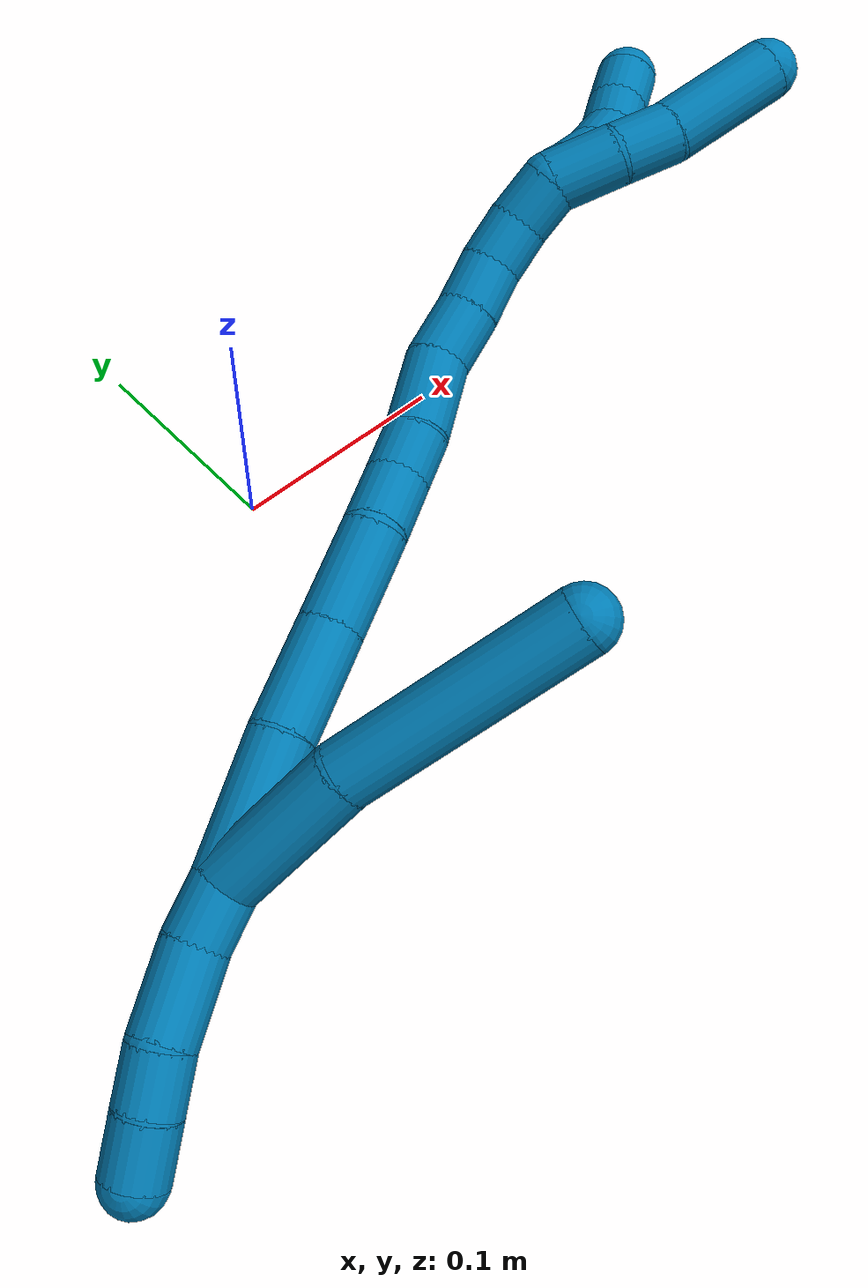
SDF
<sdf version="1.7">
 <world name="default">
  <model name="9">
   <static>0</static>
   <link name="9">
    <collision name="collision-cylinder-e_1_2_8">
     <pose>0.017546 -0.02102 0.006405 1.27502 0.673825 0.50768</pose>
     <geometry><cylinder><radius>0.0125</radius><length>0.05624</length></cylinder></geometry>
     <surface>
      <friction><ode><mu>1.16</mu><mu2>1.16</mu2><slip1>0</slip1><slip2>0</slip2></ode></friction>
      <contact><ode><kp>1e+06</kp><kd>1</kd><max_vel>0</max_vel><min_depth>0.001</min_depth></ode></contact>
     </surface>
    </collision>
    <visual name="visual-cylinder-e_1_2_8">
     <pose>0.017546 -0.02102 0.006405 1.27502 0.673825 0.50768</pose>
     <geometry><cylinder><radius>0.0125</radius><length>0.05624</length></cylinder></geometry>
     <material><ambient>0 0.490196 0.709804 1</ambient></material>
    </visual>
    <collision name="collision-cylinder-e_2_8_6">
     <pose>0.059445 -0.08179 0.017775 1.44653 0.54621 0.484856</pose>
     <geometry><cylinder><radius>0.0125</radius><length>0.09376</length></cylinder></geometry>
     <surface>
      <friction><ode><mu>1.16</mu><mu2>1.16</mu2><slip1>0</slip1><slip2>0</slip2></ode></friction>
      <contact><ode><kp>1e+06</kp><kd>1</kd><max_vel>0</max_vel><min_depth>0.001</min_depth></ode></contact>
     </surface>
    </collision>
    <visual name="visual-cylinder-e_2_8_6">
     <pose>0.059445 -0.08179 0.017775 1.44653 0.54621 0.484856</pose>
     <geometry><cylinder><radius>0.0125</radius><length>0.09376</length></cylinder></geometry>
     <material><ambient>0 0.490196 0.709804 1</ambient></material>
    </visual>
    <collision name="collision-cylinder-e_1_2_9">
     <pose>-0.01019 0.004613 0.001362 -1.28361 -1.1298 0.884726</pose>
     <geometry><cylinder><radius>0.0125</radius><length>0.022535</length></cylinder></geometry>
     <surface>
      <friction><ode><mu>1.16</mu><mu2>1.16</mu2><slip1>0</slip1><slip2>0</slip2></ode></friction>
      <contact><ode><kp>1e+06</kp><kd>1</kd><max_vel>0</max_vel><min_depth>0.001</min_depth></ode></contact>
     </surface>
    </collision>
    <visual name="visual-cylinder-e_1_2_9">
     <pose>-0.01019 0.004613 0.001362 -1.28361 -1.1298 0.884726</pose>
     <geometry><cylinder><radius>0.0125</radius><length>0.022535</length></cylinder></geometry>
     <material><ambient>0 0.490196 0.709804 1</ambient></material>
    </visual>
    <collision name="collision-cylinder-e_2_9_10">
     <pose>-0.036065 0.013448 0.00593 -0.921529 -1.2449 0.684418</pose>
     <geometry><cylinder><radius>0.0125</radius><length>0.033115</length></cylinder></geometry>
     <surface>
      <friction><ode><mu>1.16</mu><mu2>1.16</mu2><slip1>0</slip1><slip2>0</slip2></ode></friction>
      <contact><ode><kp>1e+06</kp><kd>1</kd><max_vel>0</max_vel><min_depth>0.001</min_depth></ode></contact>
     </surface>
    </collision>
    <visual name="visual-cylinder-e_2_9_10">
     <pose>-0.036065 0.013448 0.00593 -0.921529 -1.2449 0.684418</pose>
     <geometry><cylinder><radius>0.0125</radius><length>0.033115</length></cylinder></geometry>
     <material><ambient>0 0.490196 0.709804 1</ambient></material>
    </visual>
    <collision name="collision-cylinder-e_3_10_11">
     <pose>-0.062347 0.019666 0.009064 -1.60631 -1.3845 1.41951</pose>
     <geometry><cylinder><radius>0.0125</radius><length>0.021566</length></cylinder></geometry>
     <surface>
      <friction><ode><mu>1.16</mu><mu2>1.16</mu2><slip1>0</slip1><slip2>0</slip2></ode></friction>
      <contact><ode><kp>1e+06</kp><kd>1</kd><max_vel>0</max_vel><min_depth>0.001</min_depth></ode></contact>
     </surface>
    </collision>
    <visual name="visual-cylinder-e_3_10_11">
     <pose>-0.062347 0.019666 0.009064 -1.60631 -1.3845 1.41951</pose>
     <geometry><cylinder><radius>0.0125</radius><length>0.021566</length></cylinder></geometry>
     <material><ambient>0 0.490196 0.709804 1</ambient></material>
    </visual>
    <collision name="collision-cylinder-e_4_11_5">
     <pose>-0.083992 0.024067 0.007601 -2.09557 -1.3244 1.86805</pose>
     <geometry><cylinder><radius>0.0125</radius><length>0.022784</length></cylinder></geometry>
     <surface>
      <friction><ode><mu>1.16</mu><mu2>1.16</mu2><slip1>0</slip1><slip2>0</slip2></ode></friction>
      <contact><ode><kp>1e+06</kp><kd>1</kd><max_vel>0</max_vel><min_depth>0.001</min_depth></ode></contact>
     </surface>
    </collision>
    <visual name="visual-cylinder-e_4_11_5">
     <pose>-0.083992 0.024067 0.007601 -2.09557 -1.3244 1.86805</pose>
     <geometry><cylinder><radius>0.0125</radius><length>0.022784</length></cylinder></geometry>
     <material><ambient>0 0.490196 0.709804 1</ambient></material>
    </visual>
    <collision name="collision-cylinder-e_1_2_12">
     <pose>0.024199 -0.007461 -0.005606 2.21517 1.20272 1.88315</pose>
     <geometry><cylinder><radius>0.0125</radius><length>0.051873</length></cylinder></geometry>
     <surface>
      <friction><ode><mu>1.16</mu><mu2>1.16</mu2><slip1>0</slip1><slip2>0</slip2></ode></friction>
      <contact><ode><kp>1e+06</kp><kd>1</kd><max_vel>0</max_vel><min_depth>0.001</min_depth></ode></contact>
     </surface>
    </collision>
    <visual name="visual-cylinder-e_1_2_12">
     <pose>0.024199 -0.007461 -0.005606 2.21517 1.20272 1.88315</pose>
     <geometry><cylinder><radius>0.0125</radius><length>0.051873</length></cylinder></geometry>
     <material><ambient>0 0.490196 0.709804 1</ambient></material>
    </visual>
    <collision name="collision-cylinder-e_2_12_13">
     <pose>0.067432 -0.02141 -0.018393 2.40689 1.10038 2.02096</pose>
     <geometry><cylinder><radius>0.0125</radius><length>0.042705</length></cylinder></geometry>
     <surface>
      <friction><ode><mu>1.16</mu><mu2>1.16</mu2><slip1>0</slip1><slip2>0</slip2></ode></friction>
      <contact><ode><kp>1e+06</kp><kd>1</kd><max_vel>0</max_vel><min_depth>0.001</min_depth></ode></contact>
     </surface>
    </collision>
    <visual name="visual-cylinder-e_2_12_13">
     <pose>0.067432 -0.02141 -0.018393 2.40689 1.10038 2.02096</pose>
     <geometry><cylinder><radius>0.0125</radius><length>0.042705</length></cylinder></geometry>
     <material><ambient>0 0.490196 0.709804 1</ambient></material>
    </visual>
    <collision name="collision-cylinder-e_3_13_14">
     <pose>0.10476 -0.034478 -0.031215 2.27938 1.1284 1.88455</pose>
     <geometry><cylinder><radius>0.0125</radius><length>0.040489</length></cylinder></geometry>
     <surface>
      <friction><ode><mu>1.16</mu><mu2>1.16</mu2><slip1>0</slip1><slip2>0</slip2></ode></friction>
      <contact><ode><kp>1e+06</kp><kd>1</kd><max_vel>0</max_vel><min_depth>0.001</min_depth></ode></contact>
     </surface>
    </collision>
    <visual name="visual-cylinder-e_3_13_14">
     <pose>0.10476 -0.034478 -0.031215 2.27938 1.1284 1.88455</pose>
     <geometry><cylinder><radius>0.0125</radius><length>0.040489</length></cylinder></geometry>
     <material><ambient>0 0.490196 0.709804 1</ambient></material>
    </visual>
    <collision name="collision-cylinder-e_4_14_15">
     <pose>0.133525 -0.043803 -0.042946 2.71839 1.0028 2.39456</pose>
     <geometry><cylinder><radius>0.0125</radius><length>0.024839</length></cylinder></geometry>
     <surface>
      <friction><ode><mu>1.16</mu><mu2>1.16</mu2><slip1>0</slip1><slip2>0</slip2></ode></friction>
      <contact><ode><kp>1e+06</kp><kd>1</kd><max_vel>0</max_vel><min_depth>0.001</min_depth></ode></contact>
     </surface>
    </collision>
    <visual name="visual-cylinder-e_4_14_15">
     <pose>0.133525 -0.043803 -0.042946 2.71839 1.0028 2.39456</pose>
     <geometry><cylinder><radius>0.0125</radius><length>0.024839</length></cylinder></geometry>
     <material><ambient>0 0.490196 0.709804 1</ambient></material>
    </visual>
    <collision name="collision-cylinder-e_5_15_16">
     <pose>0.153275 -0.049584 -0.05226 2.38564 1.1256 2.01805</pose>
     <geometry><cylinder><radius>0.0125</radius><length>0.020566</length></cylinder></geometry>
     <surface>
      <friction><ode><mu>1.16</mu><mu2>1.16</mu2><slip1>0</slip1><slip2>0</slip2></ode></friction>
      <contact><ode><kp>1e+06</kp><kd>1</kd><max_vel>0</max_vel><min_depth>0.001</min_depth></ode></contact>
     </surface>
    </collision>
    <visual name="visual-cylinder-e_5_15_16">
     <pose>0.153275 -0.049584 -0.05226 2.38564 1.1256 2.01805</pose>
     <geometry><cylinder><radius>0.0125</radius><length>0.020566</length></cylinder></geometry>
     <material><ambient>0 0.490196 0.709804 1</ambient></material>
    </visual>
    <collision name="collision-cylinder-e_6_16_17">
     <pose>0.177908 -0.055399 -0.061462 2.70679 1.16512 2.49459</pose>
     <geometry><cylinder><radius>0.0125</radius><length>0.033417</length></cylinder></geometry>
     <surface>
      <friction><ode><mu>1.16</mu><mu2>1.16</mu2><slip1>0</slip1><slip2>0</slip2></ode></friction>
      <contact><ode><kp>1e+06</kp><kd>1</kd><max_vel>0</max_vel><min_depth>0.001</min_depth></ode></contact>
     </surface>
    </collision>
    <visual name="visual-cylinder-e_6_16_17">
     <pose>0.177908 -0.055399 -0.061462 2.70679 1.16512 2.49459</pose>
     <geometry><cylinder><radius>0.0125</radius><length>0.033417</length></cylinder></geometry>
     <material><ambient>0 0.490196 0.709804 1</ambient></material>
    </visual>
    <collision name="collision-cylinder-e_7_17_18">
     <pose>0.20372 -0.063566 -0.070323 2.06171 1.04203 1.52744</pose>
     <geometry><cylinder><radius>0.0125</radius><length>0.024228</length></cylinder></geometry>
     <surface>
      <friction><ode><mu>1.16</mu><mu2>1.16</mu2><slip1>0</slip1><slip2>0</slip2></ode></friction>
      <contact><ode><kp>1e+06</kp><kd>1</kd><max_vel>0</max_vel><min_depth>0.001</min_depth></ode></contact>
     </surface>
    </collision>
    <visual name="visual-cylinder-e_7_17_18">
     <pose>0.20372 -0.063566 -0.070323 2.06171 1.04203 1.52744</pose>
     <geometry><cylinder><radius>0.0125</radius><length>0.024228</length></cylinder></geometry>
     <material><ambient>0 0.490196 0.709804 1</ambient></material>
    </visual>
    <collision name="collision-cylinder-e_8_18_19">
     <pose>0.223802 -0.073151 -0.075026 1.98048 1.1271 1.53344</pose>
     <geometry><cylinder><radius>0.0125</radius><length>0.021308</length></cylinder></geometry>
     <surface>
      <friction><ode><mu>1.16</mu><mu2>1.16</mu2><slip1>0</slip1><slip2>0</slip2></ode></friction>
      <contact><ode><kp>1e+06</kp><kd>1</kd><max_vel>0</max_vel><min_depth>0.001</min_depth></ode></contact>
     </surface>
    </collision>
    <visual name="visual-cylinder-e_8_18_19">
     <pose>0.223802 -0.073151 -0.075026 1.98048 1.1271 1.53344</pose>
     <geometry><cylinder><radius>0.0125</radius><length>0.021308</length></cylinder></geometry>
     <material><ambient>0 0.490196 0.709804 1</ambient></material>
    </visual>
    <collision name="collision-cylinder-e_9_19_20">
     <pose>0.241994 -0.082919 -0.07698 1.59454 0.994092 1.01413</pose>
     <geometry><cylinder><radius>0.0125</radius><length>0.020447</length></cylinder></geometry>
     <surface>
      <friction><ode><mu>1.16</mu><mu2>1.16</mu2><slip1>0</slip1><slip2>0</slip2></ode></friction>
      <contact><ode><kp>1e+06</kp><kd>1</kd><max_vel>0</max_vel><min_depth>0.001</min_depth></ode></contact>
     </surface>
    </collision>
    <visual name="visual-cylinder-e_9_19_20">
     <pose>0.241994 -0.082919 -0.07698 1.59454 0.994092 1.01413</pose>
     <geometry><cylinder><radius>0.0125</radius><length>0.020447</length></cylinder></geometry>
     <material><ambient>0 0.490196 0.709804 1</ambient></material>
    </visual>
    <collision name="collision-cylinder-e_10_20_1">
     <pose>0.257986 -0.095107 -0.075549 1.33867 0.829221 0.670163</pose>
     <geometry><cylinder><radius>0.0125</radius><length>0.020129</length></cylinder></geometry>
     <surface>
      <friction><ode><mu>1.16</mu><mu2>1.16</mu2><slip1>0</slip1><slip2>0</slip2></ode></friction>
      <contact><ode><kp>1e+06</kp><kd>1</kd><max_vel>0</max_vel><min_depth>0.001</min_depth></ode></contact>
     </surface>
    </collision>
    <visual name="visual-cylinder-e_10_20_1">
     <pose>0.257986 -0.095107 -0.075549 1.33867 0.829221 0.670163</pose>
     <geometry><cylinder><radius>0.0125</radius><length>0.020129</length></cylinder></geometry>
     <material><ambient>0 0.490196 0.709804 1</ambient></material>
    </visual>
    <collision name="collision-cylinder-e_1_1_21">
     <pose>0.270911 -0.114354 -0.075472 1.68803 0.408406 0.45766</pose>
     <geometry><cylinder><radius>0.0125</radius><length>0.027717</length></cylinder></geometry>
     <surface>
      <friction><ode><mu>1.16</mu><mu2>1.16</mu2><slip1>0</slip1><slip2>0</slip2></ode></friction>
      <contact><ode><kp>1e+06</kp><kd>1</kd><max_vel>0</max_vel><min_depth>0.001</min_depth></ode></contact>
     </surface>
    </collision>
    <visual name="visual-cylinder-e_1_1_21">
     <pose>0.270911 -0.114354 -0.075472 1.68803 0.408406 0.45766</pose>
     <geometry><cylinder><radius>0.0125</radius><length>0.027717</length></cylinder></geometry>
     <material><ambient>0 0.490196 0.709804 1</ambient></material>
    </visual>
    <collision name="collision-cylinder-e_2_21_22">
     <pose>0.281587 -0.137185 -0.080221 1.88026 0.449911 0.607417</pose>
     <geometry><cylinder><radius>0.0125</radius><length>0.023784</length></cylinder></geometry>
     <surface>
      <friction><ode><mu>1.16</mu><mu2>1.16</mu2><slip1>0</slip1><slip2>0</slip2></ode></friction>
      <contact><ode><kp>1e+06</kp><kd>1</kd><max_vel>0</max_vel><min_depth>0.001</min_depth></ode></contact>
     </surface>
    </collision>
    <visual name="visual-cylinder-e_2_21_22">
     <pose>0.281587 -0.137185 -0.080221 1.88026 0.449911 0.607417</pose>
     <geometry><cylinder><radius>0.0125</radius><length>0.023784</length></cylinder></geometry>
     <material><ambient>0 0.490196 0.709804 1</ambient></material>
    </visual>
    <collision name="collision-cylinder-e_3_22_4">
     <pose>0.300853 -0.166326 -0.089016 1.85503 0.620235 0.807929</pose>
     <geometry><cylinder><radius>0.0125</radius><length>0.048499</length></cylinder></geometry>
     <surface>
      <friction><ode><mu>1.16</mu><mu2>1.16</mu2><slip1>0</slip1><slip2>0</slip2></ode></friction>
      <contact><ode><kp>1e+06</kp><kd>1</kd><max_vel>0</max_vel><min_depth>0.001</min_depth></ode></contact>
     </surface>
    </collision>
    <visual name="visual-cylinder-e_3_22_4">
     <pose>0.300853 -0.166326 -0.089016 1.85503 0.620235 0.807929</pose>
     <geometry><cylinder><radius>0.0125</radius><length>0.048499</length></cylinder></geometry>
     <material><ambient>0 0.490196 0.709804 1</ambient></material>
    </visual>
    <collision name="collision-cylinder-e_1_1_23">
     <pose>0.270446 -0.104237 -0.082249 2.84627 0.52804 2.13556</pose>
     <geometry><cylinder><radius>0.0125</radius><length>0.02</length></cylinder></geometry>
     <surface>
      <friction><ode><mu>1.16</mu><mu2>1.16</mu2><slip1>0</slip1><slip2>0</slip2></ode></friction>
      <contact><ode><kp>1e+06</kp><kd>1</kd><max_vel>0</max_vel><min_depth>0.001</min_depth></ode></contact>
     </surface>
    </collision>
    <visual name="visual-cylinder-e_1_1_23">
     <pose>0.270446 -0.104237 -0.082249 2.84627 0.52804 2.13556</pose>
     <geometry><cylinder><radius>0.0125</radius><length>0.02</length></cylinder></geometry>
     <material><ambient>0 0.490196 0.709804 1</ambient></material>
    </visual>
    <collision name="collision-cylinder-e_2_23_24">
     <pose>0.28149 -0.11127 -0.097109 2.54088 0.644232 1.64539</pose>
     <geometry><cylinder><radius>0.0125</radius><length>0.02</length></cylinder></geometry>
     <surface>
      <friction><ode><mu>1.16</mu><mu2>1.16</mu2><slip1>0</slip1><slip2>0</slip2></ode></friction>
      <contact><ode><kp>1e+06</kp><kd>1</kd><max_vel>0</max_vel><min_depth>0.001</min_depth></ode></contact>
     </surface>
    </collision>
    <visual name="visual-cylinder-e_2_23_24">
     <pose>0.28149 -0.11127 -0.097109 2.54088 0.644232 1.64539</pose>
     <geometry><cylinder><radius>0.0125</radius><length>0.02</length></cylinder></geometry>
     <material><ambient>0 0.490196 0.709804 1</ambient></material>
    </visual>
    <collision name="collision-cylinder-e_3_24_25">
     <pose>0.294328 -0.118802 -0.110357 2.71635 0.752101 2.14087</pose>
     <geometry><cylinder><radius>0.0125</radius><length>0.02</length></cylinder></geometry>
     <surface>
      <friction><ode><mu>1.16</mu><mu2>1.16</mu2><slip1>0</slip1><slip2>0</slip2></ode></friction>
      <contact><ode><kp>1e+06</kp><kd>1</kd><max_vel>0</max_vel><min_depth>0.001</min_depth></ode></contact>
     </surface>
    </collision>
    <visual name="visual-cylinder-e_3_24_25">
     <pose>0.294328 -0.118802 -0.110357 2.71635 0.752101 2.14087</pose>
     <geometry><cylinder><radius>0.0125</radius><length>0.02</length></cylinder></geometry>
     <material><ambient>0 0.490196 0.709804 1</ambient></material>
    </visual>
    <collision name="collision-cylinder-e_4_25_26">
     <pose>0.309445 -0.123053 -0.12247 2.91868 0.97648 2.72622</pose>
     <geometry><cylinder><radius>0.0125</radius><length>0.02</length></cylinder></geometry>
     <surface>
      <friction><ode><mu>1.16</mu><mu2>1.16</mu2><slip1>0</slip1><slip2>0</slip2></ode></friction>
      <contact><ode><kp>1e+06</kp><kd>1</kd><max_vel>0</max_vel><min_depth>0.001</min_depth></ode></contact>
     </surface>
    </collision>
    <visual name="visual-cylinder-e_4_25_26">
     <pose>0.309445 -0.123053 -0.12247 2.91868 0.97648 2.72622</pose>
     <geometry><cylinder><radius>0.0125</radius><length>0.02</length></cylinder></geometry>
     <material><ambient>0 0.490196 0.709804 1</ambient></material>
    </visual>
    <collision name="collision-cylinder-e_5_26_3">
     <pose>0.326593 -0.126216 -0.132142 2.71276 1.08936 2.45144</pose>
     <geometry><cylinder><radius>0.0125</radius><length>0.02</length></cylinder></geometry>
     <surface>
      <friction><ode><mu>1.16</mu><mu2>1.16</mu2><slip1>0</slip1><slip2>0</slip2></ode></friction>
      <contact><ode><kp>1e+06</kp><kd>1</kd><max_vel>0</max_vel><min_depth>0.001</min_depth></ode></contact>
     </surface>
    </collision>
    <visual name="visual-cylinder-e_5_26_3">
     <pose>0.326593 -0.126216 -0.132142 2.71276 1.08936 2.45144</pose>
     <geometry><cylinder><radius>0.0125</radius><length>0.02</length></cylinder></geometry>
     <material><ambient>0 0.490196 0.709804 1</ambient></material>
    </visual>
    <collision name="collision-sphere-3">
     <pose>0.335457 -0.128142 -0.136353 0 -0 0</pose>
     <geometry><sphere><radius>0.0125</radius></sphere></geometry>
     <surface>
      <friction><ode><mu>1.16</mu><mu2>1.16</mu2><slip1>0</slip1><slip2>0</slip2></ode></friction>
      <contact><ode><kp>1e+06</kp><kd>1</kd><max_vel>0</max_vel><min_depth>0.001</min_depth></ode></contact>
     </surface>
    </collision>
    <visual name="visual-sphere-3">
     <pose>0.335457 -0.128142 -0.136353 0 -0 0</pose>
     <geometry><sphere><radius>0.0125</radius></sphere></geometry>
     <material><ambient>0 0.490196 0.709804 1</ambient></material>
    </visual>
    <collision name="collision-sphere-26">
     <pose>0.31773 -0.124291 -0.127931 0 -0 0</pose>
     <geometry><sphere><radius>0.0125</radius></sphere></geometry>
     <surface>
      <friction><ode><mu>1.16</mu><mu2>1.16</mu2><slip1>0</slip1><slip2>0</slip2></ode></friction>
      <contact><ode><kp>1e+06</kp><kd>1</kd><max_vel>0</max_vel><min_depth>0.001</min_depth></ode></contact>
     </surface>
    </collision>
    <visual name="visual-sphere-26">
     <pose>0.31773 -0.124291 -0.127931 0 -0 0</pose>
     <geometry><sphere><radius>0.0125</radius></sphere></geometry>
     <material><ambient>0 0.490196 0.709804 1</ambient></material>
    </visual>
    <collision name="collision-sphere-25">
     <pose>0.301159 -0.121815 -0.117009 0 -0 0</pose>
     <geometry><sphere><radius>0.0125</radius></sphere></geometry>
     <surface>
      <friction><ode><mu>1.16</mu><mu2>1.16</mu2><slip1>0</slip1><slip2>0</slip2></ode></friction>
      <contact><ode><kp>1e+06</kp><kd>1</kd><max_vel>0</max_vel><min_depth>0.001</min_depth></ode></contact>
     </surface>
    </collision>
    <visual name="visual-sphere-25">
     <pose>0.301159 -0.121815 -0.117009 0 -0 0</pose>
     <geometry><sphere><radius>0.0125</radius></sphere></geometry>
     <material><ambient>0 0.490196 0.709804 1</ambient></material>
    </visual>
    <collision name="collision-sphere-24">
     <pose>0.287496 -0.11579 -0.103705 0 -0 0</pose>
     <geometry><sphere><radius>0.0125</radius></sphere></geometry>
     <surface>
      <friction><ode><mu>1.16</mu><mu2>1.16</mu2><slip1>0</slip1><slip2>0</slip2></ode></friction>
      <contact><ode><kp>1e+06</kp><kd>1</kd><max_vel>0</max_vel><min_depth>0.001</min_depth></ode></contact>
     </surface>
    </collision>
    <visual name="visual-sphere-24">
     <pose>0.287496 -0.11579 -0.103705 0 -0 0</pose>
     <geometry><sphere><radius>0.0125</radius></sphere></geometry>
     <material><ambient>0 0.490196 0.709804 1</ambient></material>
    </visual>
    <collision name="collision-sphere-23">
     <pose>0.275484 -0.106751 -0.090513 0 -0 0</pose>
     <geometry><sphere><radius>0.0125</radius></sphere></geometry>
     <surface>
      <friction><ode><mu>1.16</mu><mu2>1.16</mu2><slip1>0</slip1><slip2>0</slip2></ode></friction>
      <contact><ode><kp>1e+06</kp><kd>1</kd><max_vel>0</max_vel><min_depth>0.001</min_depth></ode></contact>
     </surface>
    </collision>
    <visual name="visual-sphere-23">
     <pose>0.275484 -0.106751 -0.090513 0 -0 0</pose>
     <geometry><sphere><radius>0.0125</radius></sphere></geometry>
     <material><ambient>0 0.490196 0.709804 1</ambient></material>
    </visual>
    <collision name="collision-sphere-4">
     <pose>0.314947 -0.185268 -0.09455 0 -0 0</pose>
     <geometry><sphere><radius>0.0125</radius></sphere></geometry>
     <surface>
      <friction><ode><mu>1.16</mu><mu2>1.16</mu2><slip1>0</slip1><slip2>0</slip2></ode></friction>
      <contact><ode><kp>1e+06</kp><kd>1</kd><max_vel>0</max_vel><min_depth>0.001</min_depth></ode></contact>
     </surface>
    </collision>
    <visual name="visual-sphere-4">
     <pose>0.314947 -0.185268 -0.09455 0 -0 0</pose>
     <geometry><sphere><radius>0.0125</radius></sphere></geometry>
     <material><ambient>0 0.490196 0.709804 1</ambient></material>
    </visual>
    <collision name="collision-sphere-22">
     <pose>0.286758 -0.147385 -0.083482 0 -0 0</pose>
     <geometry><sphere><radius>0.0125</radius></sphere></geometry>
     <surface>
      <friction><ode><mu>1.16</mu><mu2>1.16</mu2><slip1>0</slip1><slip2>0</slip2></ode></friction>
      <contact><ode><kp>1e+06</kp><kd>1</kd><max_vel>0</max_vel><min_depth>0.001</min_depth></ode></contact>
     </surface>
    </collision>
    <visual name="visual-sphere-22">
     <pose>0.286758 -0.147385 -0.083482 0 -0 0</pose>
     <geometry><sphere><radius>0.0125</radius></sphere></geometry>
     <material><ambient>0 0.490196 0.709804 1</ambient></material>
    </visual>
    <collision name="collision-sphere-21">
     <pose>0.276415 -0.126986 -0.07696 0 -0 0</pose>
     <geometry><sphere><radius>0.0125</radius></sphere></geometry>
     <surface>
      <friction><ode><mu>1.16</mu><mu2>1.16</mu2><slip1>0</slip1><slip2>0</slip2></ode></friction>
      <contact><ode><kp>1e+06</kp><kd>1</kd><max_vel>0</max_vel><min_depth>0.001</min_depth></ode></contact>
     </surface>
    </collision>
    <visual name="visual-sphere-21">
     <pose>0.276415 -0.126986 -0.07696 0 -0 0</pose>
     <geometry><sphere><radius>0.0125</radius></sphere></geometry>
     <material><ambient>0 0.490196 0.709804 1</ambient></material>
    </visual>
    <collision name="collision-sphere-1">
     <pose>0.265407 -0.101723 -0.073985 0 -0 0</pose>
     <geometry><sphere><radius>0.0125</radius></sphere></geometry>
     <surface>
      <friction><ode><mu>1.16</mu><mu2>1.16</mu2><slip1>0</slip1><slip2>0</slip2></ode></friction>
      <contact><ode><kp>1e+06</kp><kd>1</kd><max_vel>0</max_vel><min_depth>0.001</min_depth></ode></contact>
     </surface>
    </collision>
    <visual name="visual-sphere-1">
     <pose>0.265407 -0.101723 -0.073985 0 -0 0</pose>
     <geometry><sphere><radius>0.0125</radius></sphere></geometry>
     <material><ambient>0 0.490196 0.709804 1</ambient></material>
    </visual>
    <collision name="collision-sphere-11">
     <pose>-0.072943 0.021662 0.008993 0 -0 0</pose>
     <geometry><sphere><radius>0.0125</radius></sphere></geometry>
     <surface>
      <friction><ode><mu>1.16</mu><mu2>1.16</mu2><slip1>0</slip1><slip2>0</slip2></ode></friction>
      <contact><ode><kp>1e+06</kp><kd>1</kd><max_vel>0</max_vel><min_depth>0.001</min_depth></ode></contact>
     </surface>
    </collision>
    <visual name="visual-sphere-11">
     <pose>-0.072943 0.021662 0.008993 0 -0 0</pose>
     <geometry><sphere><radius>0.0125</radius></sphere></geometry>
     <material><ambient>0 0.490196 0.709804 1</ambient></material>
    </visual>
    <collision name="collision-sphere-10">
     <pose>-0.051751 0.01767 0.009135 0 -0 0</pose>
     <geometry><sphere><radius>0.0125</radius></sphere></geometry>
     <surface>
      <friction><ode><mu>1.16</mu><mu2>1.16</mu2><slip1>0</slip1><slip2>0</slip2></ode></friction>
      <contact><ode><kp>1e+06</kp><kd>1</kd><max_vel>0</max_vel><min_depth>0.001</min_depth></ode></contact>
     </surface>
    </collision>
    <visual name="visual-sphere-10">
     <pose>-0.051751 0.01767 0.009135 0 -0 0</pose>
     <geometry><sphere><radius>0.0125</radius></sphere></geometry>
     <material><ambient>0 0.490196 0.709804 1</ambient></material>
    </visual>
    <collision name="collision-sphere-6">
     <pose>0.083796 -0.12154 0.022741 0 -0 0</pose>
     <geometry><sphere><radius>0.0125</radius></sphere></geometry>
     <surface>
      <friction><ode><mu>1.16</mu><mu2>1.16</mu2><slip1>0</slip1><slip2>0</slip2></ode></friction>
      <contact><ode><kp>1e+06</kp><kd>1</kd><max_vel>0</max_vel><min_depth>0.001</min_depth></ode></contact>
     </surface>
    </collision>
    <visual name="visual-sphere-6">
     <pose>0.083796 -0.12154 0.022741 0 -0 0</pose>
     <geometry><sphere><radius>0.0125</radius></sphere></geometry>
     <material><ambient>0 0.490196 0.709804 1</ambient></material>
    </visual>
    <collision name="collision-sphere-9">
     <pose>-0.020379 0.009225 0.002725 0 -0 0</pose>
     <geometry><sphere><radius>0.0125</radius></sphere></geometry>
     <surface>
      <friction><ode><mu>1.16</mu><mu2>1.16</mu2><slip1>0</slip1><slip2>0</slip2></ode></friction>
      <contact><ode><kp>1e+06</kp><kd>1</kd><max_vel>0</max_vel><min_depth>0.001</min_depth></ode></contact>
     </surface>
    </collision>
    <visual name="visual-sphere-9">
     <pose>-0.020379 0.009225 0.002725 0 -0 0</pose>
     <geometry><sphere><radius>0.0125</radius></sphere></geometry>
     <material><ambient>0 0.490196 0.709804 1</ambient></material>
    </visual>
    <collision name="collision-sphere-2">
     <geometry><sphere><radius>0.0125</radius></sphere></geometry>
     <surface>
      <friction><ode><mu>1.16</mu><mu2>1.16</mu2><slip1>0</slip1><slip2>0</slip2></ode></friction>
      <contact><ode><kp>1e+06</kp><kd>1</kd><max_vel>0</max_vel><min_depth>0.001</min_depth></ode></contact>
     </surface>
    </collision>
    <visual name="visual-sphere-2">
     <geometry><sphere><radius>0.0125</radius></sphere></geometry>
     <material><ambient>0 0.490196 0.709804 1</ambient></material>
    </visual>
    <collision name="collision-sphere-19">
     <pose>0.233425 -0.077346 -0.076848 0 -0 0</pose>
     <geometry><sphere><radius>0.0125</radius></sphere></geometry>
     <surface>
      <friction><ode><mu>1.16</mu><mu2>1.16</mu2><slip1>0</slip1><slip2>0</slip2></ode></friction>
      <contact><ode><kp>1e+06</kp><kd>1</kd><max_vel>0</max_vel><min_depth>0.001</min_depth></ode></contact>
     </surface>
    </collision>
    <visual name="visual-sphere-19">
     <pose>0.233425 -0.077346 -0.076848 0 -0 0</pose>
     <geometry><sphere><radius>0.0125</radius></sphere></geometry>
     <material><ambient>0 0.490196 0.709804 1</ambient></material>
    </visual>
    <collision name="collision-sphere-8">
     <pose>0.035093 -0.04204 0.01281 0 -0 0</pose>
     <geometry><sphere><radius>0.0125</radius></sphere></geometry>
     <surface>
      <friction><ode><mu>1.16</mu><mu2>1.16</mu2><slip1>0</slip1><slip2>0</slip2></ode></friction>
      <contact><ode><kp>1e+06</kp><kd>1</kd><max_vel>0</max_vel><min_depth>0.001</min_depth></ode></contact>
     </surface>
    </collision>
    <visual name="visual-sphere-8">
     <pose>0.035093 -0.04204 0.01281 0 -0 0</pose>
     <geometry><sphere><radius>0.0125</radius></sphere></geometry>
     <material><ambient>0 0.490196 0.709804 1</ambient></material>
    </visual>
    <collision name="collision-sphere-5">
     <pose>-0.09504 0.026471 0.006208 0 -0 0</pose>
     <geometry><sphere><radius>0.0125</radius></sphere></geometry>
     <surface>
      <friction><ode><mu>1.16</mu><mu2>1.16</mu2><slip1>0</slip1><slip2>0</slip2></ode></friction>
      <contact><ode><kp>1e+06</kp><kd>1</kd><max_vel>0</max_vel><min_depth>0.001</min_depth></ode></contact>
     </surface>
    </collision>
    <visual name="visual-sphere-5">
     <pose>-0.09504 0.026471 0.006208 0 -0 0</pose>
     <geometry><sphere><radius>0.0125</radius></sphere></geometry>
     <material><ambient>0 0.490196 0.709804 1</ambient></material>
    </visual>
    <collision name="collision-sphere-12">
     <pose>0.048398 -0.014922 -0.011212 0 -0 0</pose>
     <geometry><sphere><radius>0.0125</radius></sphere></geometry>
     <surface>
      <friction><ode><mu>1.16</mu><mu2>1.16</mu2><slip1>0</slip1><slip2>0</slip2></ode></friction>
      <contact><ode><kp>1e+06</kp><kd>1</kd><max_vel>0</max_vel><min_depth>0.001</min_depth></ode></contact>
     </surface>
    </collision>
    <visual name="visual-sphere-12">
     <pose>0.048398 -0.014922 -0.011212 0 -0 0</pose>
     <geometry><sphere><radius>0.0125</radius></sphere></geometry>
     <material><ambient>0 0.490196 0.709804 1</ambient></material>
    </visual>
    <collision name="collision-sphere-13">
     <pose>0.086465 -0.027898 -0.025575 0 -0 0</pose>
     <geometry><sphere><radius>0.0125</radius></sphere></geometry>
     <surface>
      <friction><ode><mu>1.16</mu><mu2>1.16</mu2><slip1>0</slip1><slip2>0</slip2></ode></friction>
      <contact><ode><kp>1e+06</kp><kd>1</kd><max_vel>0</max_vel><min_depth>0.001</min_depth></ode></contact>
     </surface>
    </collision>
    <visual name="visual-sphere-13">
     <pose>0.086465 -0.027898 -0.025575 0 -0 0</pose>
     <geometry><sphere><radius>0.0125</radius></sphere></geometry>
     <material><ambient>0 0.490196 0.709804 1</ambient></material>
    </visual>
    <collision name="collision-sphere-14">
     <pose>0.123056 -0.041059 -0.036855 0 -0 0</pose>
     <geometry><sphere><radius>0.0125</radius></sphere></geometry>
     <surface>
      <friction><ode><mu>1.16</mu><mu2>1.16</mu2><slip1>0</slip1><slip2>0</slip2></ode></friction>
      <contact><ode><kp>1e+06</kp><kd>1</kd><max_vel>0</max_vel><min_depth>0.001</min_depth></ode></contact>
     </surface>
    </collision>
    <visual name="visual-sphere-14">
     <pose>0.123056 -0.041059 -0.036855 0 -0 0</pose>
     <geometry><sphere><radius>0.0125</radius></sphere></geometry>
     <material><ambient>0 0.490196 0.709804 1</ambient></material>
    </visual>
    <collision name="collision-sphere-15">
     <pose>0.143995 -0.046546 -0.049038 0 -0 0</pose>
     <geometry><sphere><radius>0.0125</radius></sphere></geometry>
     <surface>
      <friction><ode><mu>1.16</mu><mu2>1.16</mu2><slip1>0</slip1><slip2>0</slip2></ode></friction>
      <contact><ode><kp>1e+06</kp><kd>1</kd><max_vel>0</max_vel><min_depth>0.001</min_depth></ode></contact>
     </surface>
    </collision>
    <visual name="visual-sphere-15">
     <pose>0.143995 -0.046546 -0.049038 0 -0 0</pose>
     <geometry><sphere><radius>0.0125</radius></sphere></geometry>
     <material><ambient>0 0.490196 0.709804 1</ambient></material>
    </visual>
    <collision name="collision-sphere-16">
     <pose>0.162556 -0.052622 -0.055482 0 -0 0</pose>
     <geometry><sphere><radius>0.0125</radius></sphere></geometry>
     <surface>
      <friction><ode><mu>1.16</mu><mu2>1.16</mu2><slip1>0</slip1><slip2>0</slip2></ode></friction>
      <contact><ode><kp>1e+06</kp><kd>1</kd><max_vel>0</max_vel><min_depth>0.001</min_depth></ode></contact>
     </surface>
    </collision>
    <visual name="visual-sphere-16">
     <pose>0.162556 -0.052622 -0.055482 0 -0 0</pose>
     <geometry><sphere><radius>0.0125</radius></sphere></geometry>
     <material><ambient>0 0.490196 0.709804 1</ambient></material>
    </visual>
    <collision name="collision-sphere-17">
     <pose>0.19326 -0.058177 -0.067442 0 -0 0</pose>
     <geometry><sphere><radius>0.0125</radius></sphere></geometry>
     <surface>
      <friction><ode><mu>1.16</mu><mu2>1.16</mu2><slip1>0</slip1><slip2>0</slip2></ode></friction>
      <contact><ode><kp>1e+06</kp><kd>1</kd><max_vel>0</max_vel><min_depth>0.001</min_depth></ode></contact>
     </surface>
    </collision>
    <visual name="visual-sphere-17">
     <pose>0.19326 -0.058177 -0.067442 0 -0 0</pose>
     <geometry><sphere><radius>0.0125</radius></sphere></geometry>
     <material><ambient>0 0.490196 0.709804 1</ambient></material>
    </visual>
    <collision name="collision-sphere-18">
     <pose>0.21418 -0.068956 -0.073204 0 -0 0</pose>
     <geometry><sphere><radius>0.0125</radius></sphere></geometry>
     <surface>
      <friction><ode><mu>1.16</mu><mu2>1.16</mu2><slip1>0</slip1><slip2>0</slip2></ode></friction>
      <contact><ode><kp>1e+06</kp><kd>1</kd><max_vel>0</max_vel><min_depth>0.001</min_depth></ode></contact>
     </surface>
    </collision>
    <visual name="visual-sphere-18">
     <pose>0.21418 -0.068956 -0.073204 0 -0 0</pose>
     <geometry><sphere><radius>0.0125</radius></sphere></geometry>
     <material><ambient>0 0.490196 0.709804 1</ambient></material>
    </visual>
    <collision name="collision-sphere-20">
     <pose>0.250564 -0.088492 -0.077113 0 -0 0</pose>
     <geometry><sphere><radius>0.0125</radius></sphere></geometry>
     <surface>
      <friction><ode><mu>1.16</mu><mu2>1.16</mu2><slip1>0</slip1><slip2>0</slip2></ode></friction>
      <contact><ode><kp>1e+06</kp><kd>1</kd><max_vel>0</max_vel><min_depth>0.001</min_depth></ode></contact>
     </surface>
    </collision>
    <visual name="visual-sphere-20">
     <pose>0.250564 -0.088492 -0.077113 0 -0 0</pose>
     <geometry><sphere><radius>0.0125</radius></sphere></geometry>
     <material><ambient>0 0.490196 0.709804 1</ambient></material>
    </visual>
    <inertial>
     <pose>0.13461 -0.062486 -0.039352 0 -0 0</pose>
     <mass>0.75</mass>
     <inertia><ixx>0.000166</ixx><ixy>0</ixy><ixz>0</ixz><iyy>0.000132</iyy><iyz>0</iyz><izz>-2e-06</izz></inertia>
    </inertial>
   </link>
   <pose>-0.13089 -0.159718 0.05772 -0.177803 -0.507156 0.831191</pose>
  </model>
 </world>
</sdf>
